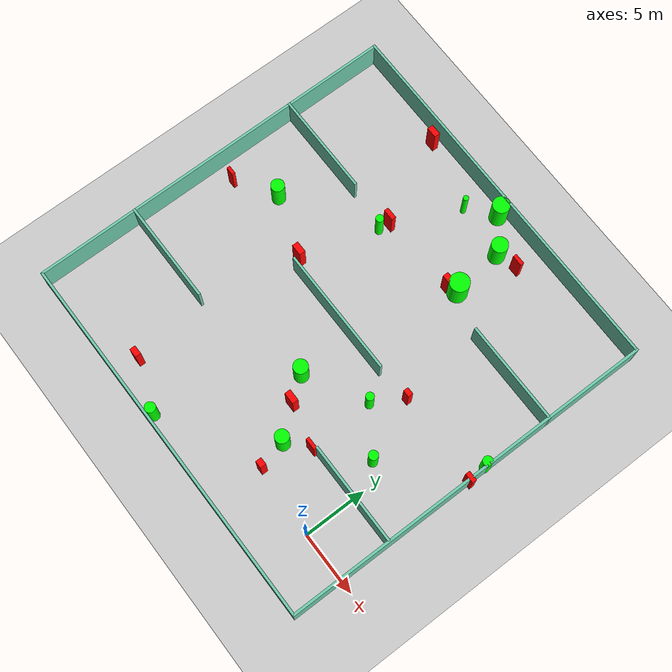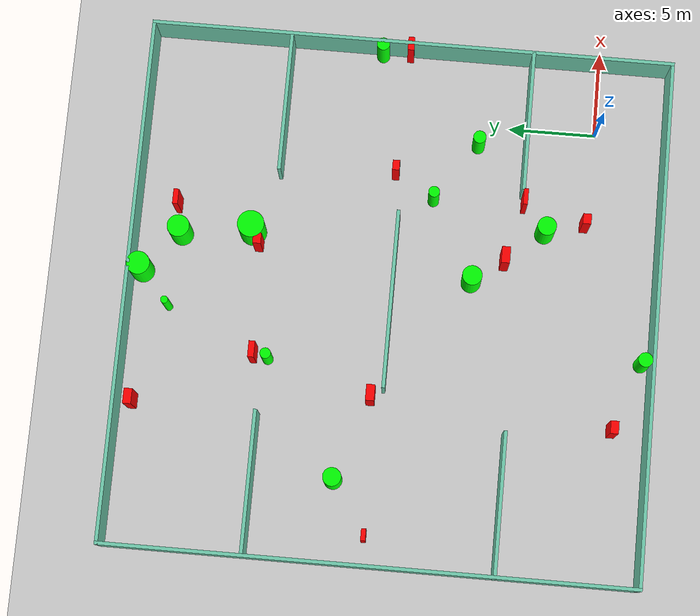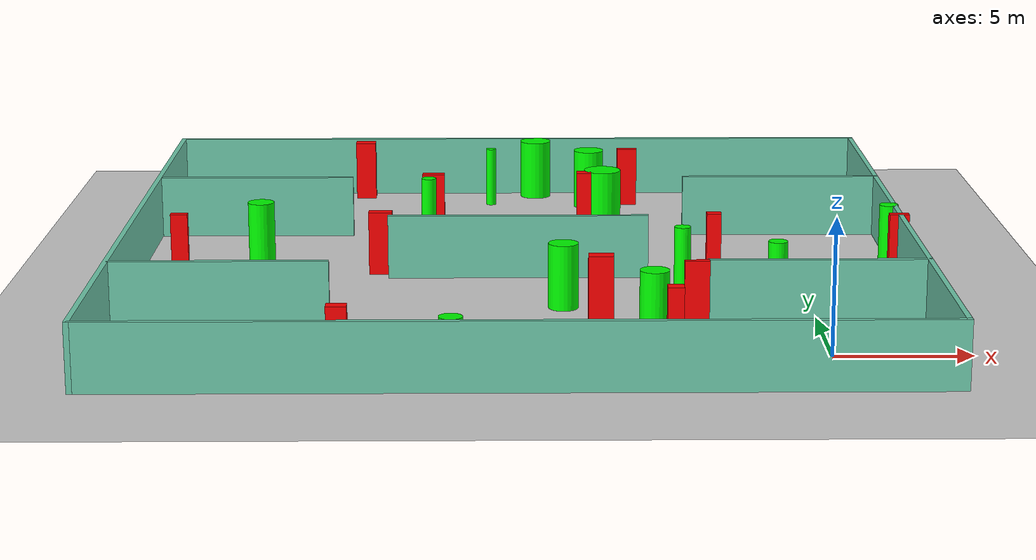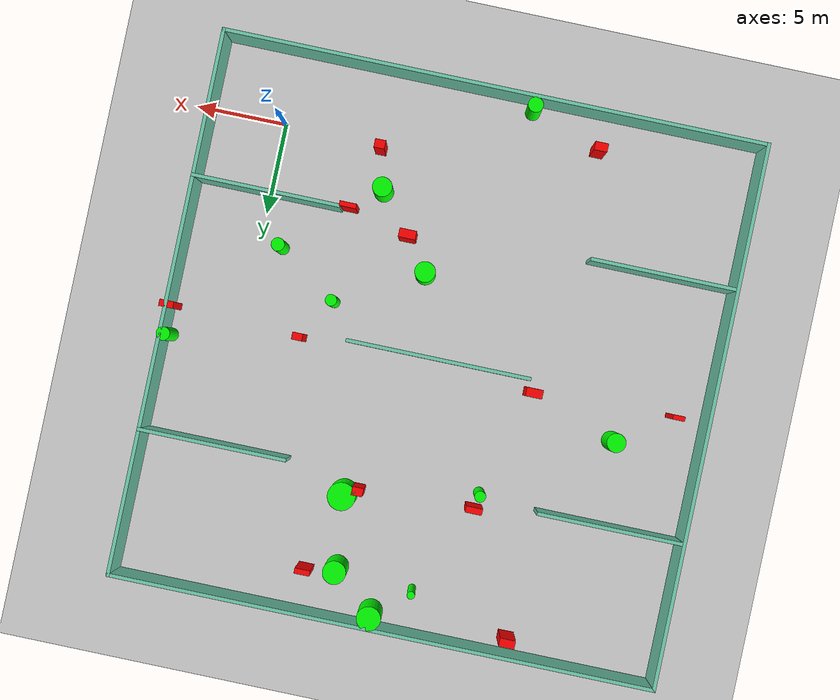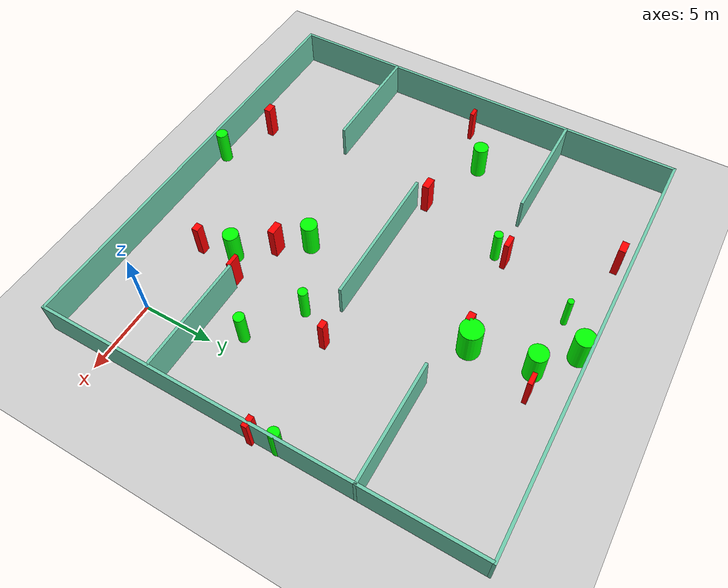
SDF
<sdf version="1.7">
 <world name="default">
  <light name="sun" type="directional">
   <pose>0 0 10 0 -0 0</pose>
   <diffuse>0.8 0.8 0.8 1</diffuse>
   <specular>0.2 0.2 0.2 1</specular>
   <attenuation>
    <range>1000</range>
    <constant>0.9</constant>
    <linear>0.01</linear>
    <quadratic>0.001</quadratic>
   </attenuation>
   <direction>-0.5 0.1 -0.9</direction>
   <spot><inner_angle>0</inner_angle><outer_angle>0</outer_angle><falloff>0</falloff></spot>
  </light>
  <model name="ground_plane">
   <static>1</static>
   <link name="link">
    <collision name="collision">
     <geometry><plane><normal>0 0 1</normal><size>100 100</size></plane></geometry>
     <surface>
      <contact><collide_bitmask>65535</collide_bitmask></contact>
      <friction><ode><mu>100</mu><mu2>50</mu2></ode></friction>
     </surface>
    </collision>
    <visual name="visual">
     <cast_shadows>0</cast_shadows>
     <geometry><plane><normal>0 0 1</normal><size>100 100</size></plane></geometry>
     <material>
      <script><uri>file://media/materials/scripts/gazebo.material</uri><name>Gazebo/Grey</name></script>
     </material>
    </visual>
   </link>
  </model>
  <gravity>0 0 -9.8</gravity>
  <magnetic_field>6e-06 2.3e-05 -4.2e-05</magnetic_field>
  <atmosphere type="adiabatic"/>
  <physics type="ode">
   <max_step_size>0.001</max_step_size>
   <real_time_factor>1</real_time_factor>
   <real_time_update_rate>1000</real_time_update_rate>
  </physics>
  <scene><ambient>0.4 0.4 0.4 1</ambient><background>0.7 0.7 0.7 1</background><shadows>1</shadows></scene>
  <spherical_coordinates>
   <surface_model>EARTH_WGS84</surface_model>
   <latitude_deg>0</latitude_deg>
   <longitude_deg>0</longitude_deg>
   <elevation>0</elevation>
   <heading_deg>0</heading_deg>
  </spherical_coordinates>
  <model name="my_base_walls">
   <link name="Wall_10">
    <collision name="Wall_10_Collision">
     <geometry><box><size>8.2 0.2 2.5</size></box></geometry>
     <pose>0 0 1.25 0 -0 0</pose>
    </collision>
    <visual name="Wall_10_Visual">
     <pose>0 0 1.25 0 -0 0</pose>
     <geometry><box><size>8.2 0.2 2.5</size></box></geometry>
     <material>
      <script><uri>file://media/materials/scripts/gazebo.material</uri><name>Gazebo/Grey</name></script>
      <ambient>0.435294 0.796078 0.67451 1</ambient>
     </material>
     <meta><layer>0</layer></meta>
    </visual>
    <pose>-11 -7 0 0 -0 0</pose>
   </link>
   <link name="Wall_12">
    <collision name="Wall_12_Collision">
     <geometry><box><size>8.2 0.2 2.5</size></box></geometry>
     <pose>0 0 1.25 0 -0 0</pose>
    </collision>
    <visual name="Wall_12_Visual">
     <pose>0 0 1.25 0 -0 0</pose>
     <geometry><box><size>8.2 0.2 2.5</size></box></geometry>
     <material>
      <script><uri>file://media/materials/scripts/gazebo.material</uri><name>Gazebo/Grey</name></script>
      <ambient>0.435294 0.796078 0.67451 1</ambient>
     </material>
     <meta><layer>0</layer></meta>
    </visual>
    <pose>-11 7 0 0 -0 0</pose>
   </link>
   <link name="Wall_14">
    <collision name="Wall_14_Collision">
     <geometry><box><size>8.2 0.2 2.5</size></box></geometry>
     <pose>0 0 1.25 0 -0 0</pose>
    </collision>
    <visual name="Wall_14_Visual">
     <pose>0 0 1.25 0 -0 0</pose>
     <geometry><box><size>8.2 0.2 2.5</size></box></geometry>
     <material>
      <script><uri>file://media/materials/scripts/gazebo.material</uri><name>Gazebo/Grey</name></script>
      <ambient>0.435294 0.796078 0.67451 1</ambient>
     </material>
     <meta><layer>0</layer></meta>
    </visual>
    <pose>11 7 0 0 -0 3.14159</pose>
   </link>
   <link name="Wall_16">
    <collision name="Wall_16_Collision">
     <geometry><box><size>10.2 0.2 2.5</size></box></geometry>
     <pose>0 0 1.25 0 -0 0</pose>
    </collision>
    <visual name="Wall_16_Visual">
     <pose>0 0 1.25 0 -0 0</pose>
     <geometry><box><size>10.2 0.2 2.5</size></box></geometry>
     <material>
      <script><uri>file://media/materials/scripts/gazebo.material</uri><name>Gazebo/Grey</name></script>
      <ambient>0.435294 0.796078 0.67451 1</ambient>
     </material>
     <meta><layer>0</layer></meta>
    </visual>
    <pose>0 0 0 0 -0 3.14159</pose>
   </link>
   <link name="Wall_2">
    <collision name="Wall_2_Collision">
     <geometry><box><size>30.2 0.2 2.5</size></box></geometry>
     <pose>0 0 1.25 0 -0 0</pose>
    </collision>
    <visual name="Wall_2_Visual">
     <pose>0 0 1.25 0 -0 0</pose>
     <geometry><box><size>30.2 0.2 2.5</size></box></geometry>
     <material>
      <script><uri>file://media/materials/scripts/gazebo.material</uri><name>Gazebo/Grey</name></script>
      <ambient>0.435294 0.796078 0.67451 1</ambient>
     </material>
     <meta><layer>0</layer></meta>
    </visual>
    <pose>0 -15 0 0 -0 3.14159</pose>
   </link>
   <link name="Wall_3">
    <collision name="Wall_3_Collision">
     <geometry><box><size>30.2 0.2 2.5</size></box></geometry>
     <pose>0 0 1.25 0 -0 0</pose>
    </collision>
    <visual name="Wall_3_Visual">
     <pose>0 0 1.25 0 -0 0</pose>
     <geometry><box><size>30.2 0.2 2.5</size></box></geometry>
     <material>
      <script><uri>file://media/materials/scripts/gazebo.material</uri><name>Gazebo/Grey</name></script>
      <ambient>0.435294 0.796078 0.67451 1</ambient>
     </material>
     <meta><layer>0</layer></meta>
    </visual>
    <pose>-15 0 0 0 -0 1.5708</pose>
   </link>
   <link name="Wall_4">
    <collision name="Wall_4_Collision">
     <geometry><box><size>30.2 0.2 2.5</size></box></geometry>
     <pose>0 0 1.25 0 -0 0</pose>
    </collision>
    <visual name="Wall_4_Visual">
     <pose>0 0 1.25 0 -0 0</pose>
     <geometry><box><size>30.2 0.2 2.5</size></box></geometry>
     <material>
      <script><uri>file://media/materials/scripts/gazebo.material</uri><name>Gazebo/Grey</name></script>
      <ambient>0.435294 0.796078 0.67451 1</ambient>
     </material>
     <meta><layer>0</layer></meta>
    </visual>
    <pose>0 15 0 0 -0 0</pose>
   </link>
   <link name="Wall_6">
    <collision name="Wall_6_Collision">
     <geometry><box><size>30.2 0.2 2.5</size></box></geometry>
     <pose>0 0 1.25 0 -0 0</pose>
    </collision>
    <visual name="Wall_6_Visual">
     <pose>0 0 1.25 0 -0 0</pose>
     <geometry><box><size>30.2 0.2 2.5</size></box></geometry>
     <material>
      <script><uri>file://media/materials/scripts/gazebo.material</uri><name>Gazebo/Grey</name></script>
      <ambient>0.435294 0.796078 0.67451 1</ambient>
     </material>
     <meta><layer>0</layer></meta>
    </visual>
    <pose>15 0 0 0 -0 1.5708</pose>
   </link>
   <link name="Wall_8">
    <collision name="Wall_8_Collision">
     <geometry><box><size>8.2 0.2 2.5</size></box></geometry>
     <pose>0 0 1.25 0 -0 0</pose>
    </collision>
    <visual name="Wall_8_Visual">
     <pose>0 0 1.25 0 -0 0</pose>
     <geometry><box><size>8.2 0.2 2.5</size></box></geometry>
     <material>
      <script><uri>file://media/materials/scripts/gazebo.material</uri><name>Gazebo/Grey</name></script>
      <ambient>0.435294 0.796078 0.67451 1</ambient>
     </material>
     <meta><layer>0</layer></meta>
    </visual>
    <pose>11 -7 0 0 -0 3.14159</pose>
   </link>
   <static>1</static>
   <pose>-11 11 0 0 -0 0</pose>
  </model>
  <model name="cylinder1">
   <static>1</static>
   <link name="link">
    <inertial>
     <mass>1</mass>
     <inertia><ixx>0.5</ixx><ixy>0</ixy><ixz>0</ixz><iyy>0.5</iyy><iyz>0</iyz><izz>1</izz></inertia>
    </inertial>
    <collision name="collision">
     <geometry><cylinder><radius>0.372145</radius><length>2.5</length></cylinder></geometry>
    </collision>
    <visual name="visual">
     <geometry><cylinder><radius>0.372145</radius><length>2.5</length></cylinder></geometry>
     <material>
      <ambient>0 1 0 1</ambient>
      <diffuse>0 1 0 1</diffuse>
      <specular>0.1 0.1 0.1 1</specular>
      <emissive>0 0 0 0</emissive>
     </material>
    </visual>
   </link>
   <pose>3.78691 12.6977 1.25 0 -0 0</pose>
  </model>
  <model name="cylinder2">
   <static>1</static>
   <link name="link">
    <inertial>
     <mass>1</mass>
     <inertia><ixx>0.5</ixx><ixy>0</ixy><ixz>0</ixz><iyy>0.5</iyy><iyz>0</iyz><izz>1</izz></inertia>
    </inertial>
    <collision name="collision">
     <geometry><cylinder><radius>0.567465</radius><length>2.5</length></cylinder></geometry>
    </collision>
    <visual name="visual">
     <geometry><cylinder><radius>0.567465</radius><length>2.5</length></cylinder></geometry>
     <material>
      <ambient>0 1 0 1</ambient>
      <diffuse>0 1 0 1</diffuse>
      <specular>0.1 0.1 0.1 1</specular>
      <emissive>0 0 0 0</emissive>
     </material>
    </visual>
   </link>
   <pose>-9.31358 6.53582 1.25 0 -0 0</pose>
  </model>
  <model name="cylinder3">
   <static>1</static>
   <link name="link">
    <inertial>
     <mass>1</mass>
     <inertia><ixx>0.5</ixx><ixy>0</ixy><ixz>0</ixz><iyy>0.5</iyy><iyz>0</iyz><izz>1</izz></inertia>
    </inertial>
    <collision name="collision">
     <geometry><cylinder><radius>0.366612</radius><length>2.5</length></cylinder></geometry>
    </collision>
    <visual name="visual">
     <geometry><cylinder><radius>0.366612</radius><length>2.5</length></cylinder></geometry>
     <material>
      <ambient>0 1 0 1</ambient>
      <diffuse>0 1 0 1</diffuse>
      <specular>0.1 0.1 0.1 1</specular>
      <emissive>0 0 0 0</emissive>
     </material>
    </visual>
   </link>
   <pose>-1.2569 6.73109 1.25 0 -0 0</pose>
  </model>
  <model name="cylinder4">
   <static>1</static>
   <link name="link">
    <inertial>
     <mass>1</mass>
     <inertia><ixx>0.5</ixx><ixy>0</ixy><ixz>0</ixz><iyy>0.5</iyy><iyz>0</iyz><izz>1</izz></inertia>
    </inertial>
    <collision name="collision">
     <geometry><cylinder><radius>0.767392</radius><length>2.5</length></cylinder></geometry>
    </collision>
    <visual name="visual">
     <geometry><cylinder><radius>0.767392</radius><length>2.5</length></cylinder></geometry>
     <material>
      <ambient>0 1 0 1</ambient>
      <diffuse>0 1 0 1</diffuse>
      <specular>0.1 0.1 0.1 1</specular>
      <emissive>0 0 0 0</emissive>
     </material>
    </visual>
   </link>
   <pose>-7.41271 19.2862 1.25 0 -0 0</pose>
  </model>
  <model name="cylinder5">
   <static>1</static>
   <link name="link">
    <inertial>
     <mass>1</mass>
     <inertia><ixx>0.5</ixx><ixy>0</ixy><ixz>0</ixz><iyy>0.5</iyy><iyz>0</iyz><izz>1</izz></inertia>
    </inertial>
    <collision name="collision">
     <geometry><cylinder><radius>0.525135</radius><length>2.5</length></cylinder></geometry>
    </collision>
    <visual name="visual">
     <geometry><cylinder><radius>0.525135</radius><length>2.5</length></cylinder></geometry>
     <material>
      <ambient>0 1 0 1</ambient>
      <diffuse>0 1 0 1</diffuse>
      <specular>0.1 0.1 0.1 1</specular>
      <emissive>0 0 0 0</emissive>
     </material>
    </visual>
   </link>
   <pose>-21.287 13.4044 1.25 0 -0 0</pose>
  </model>
  <model name="cylinder6">
   <static>1</static>
   <link name="link">
    <inertial>
     <mass>1</mass>
     <inertia><ixx>0.5</ixx><ixy>0</ixy><ixz>0</ixz><iyy>0.5</iyy><iyz>0</iyz><izz>1</izz></inertia>
    </inertial>
    <collision name="collision">
     <geometry><cylinder><radius>0.307878</radius><length>2.5</length></cylinder></geometry>
    </collision>
    <visual name="visual">
     <geometry><cylinder><radius>0.307878</radius><length>2.5</length></cylinder></geometry>
     <material>
      <ambient>0 1 0 1</ambient>
      <diffuse>0 1 0 1</diffuse>
      <specular>0.1 0.1 0.1 1</specular>
      <emissive>0 0 0 0</emissive>
     </material>
    </visual>
   </link>
   <pose>-14.7223 17.7472 1.25 0 -0 0</pose>
  </model>
  <model name="cylinder7">
   <static>1</static>
   <link name="link">
    <inertial>
     <mass>1</mass>
     <inertia><ixx>0.5</ixx><ixy>0</ixy><ixz>0</ixz><iyy>0.5</iyy><iyz>0</iyz><izz>1</izz></inertia>
    </inertial>
    <collision name="collision">
     <geometry><cylinder><radius>0.415955</radius><length>2.5</length></cylinder></geometry>
    </collision>
    <visual name="visual">
     <geometry><cylinder><radius>0.415955</radius><length>2.5</length></cylinder></geometry>
     <material>
      <ambient>0 1 0 1</ambient>
      <diffuse>0 1 0 1</diffuse>
      <specular>0.1 0.1 0.1 1</specular>
      <emissive>0 0 0 0</emissive>
     </material>
    </visual>
   </link>
   <pose>-13.2834 -3.50308 1.25 0 -0 0</pose>
  </model>
  <model name="cylinder8">
   <static>1</static>
   <link name="link">
    <inertial>
     <mass>1</mass>
     <inertia><ixx>0.5</ixx><ixy>0</ixy><ixz>0</ixz><iyy>0.5</iyy><iyz>0</iyz><izz>1</izz></inertia>
    </inertial>
    <collision name="collision">
     <geometry><cylinder><radius>0.318103</radius><length>2.5</length></cylinder></geometry>
    </collision>
    <visual name="visual">
     <geometry><cylinder><radius>0.318103</radius><length>2.5</length></cylinder></geometry>
     <material>
      <ambient>0 1 0 1</ambient>
      <diffuse>0 1 0 1</diffuse>
      <specular>0.1 0.1 0.1 1</specular>
      <emissive>0 0 0 0</emissive>
     </material>
    </visual>
   </link>
   <pose>-4.68006 9.07465 1.25 0 -0 0</pose>
  </model>
  <model name="cylinder9">
   <static>1</static>
   <link name="link">
    <inertial>
     <mass>1</mass>
     <inertia><ixx>0.5</ixx><ixy>0</ixy><ixz>0</ixz><iyy>0.5</iyy><iyz>0</iyz><izz>1</izz></inertia>
    </inertial>
    <collision name="collision">
     <geometry><cylinder><radius>0.665034</radius><length>2.5</length></cylinder></geometry>
    </collision>
    <visual name="visual">
     <geometry><cylinder><radius>0.665034</radius><length>2.5</length></cylinder></geometry>
     <material>
      <ambient>0 1 0 1</ambient>
      <diffuse>0 1 0 1</diffuse>
      <specular>0.1 0.1 0.1 1</specular>
      <emissive>0 0 0 0</emissive>
     </material>
    </visual>
   </link>
   <pose>-10.2008 25.4115 1.25 0 -0 0</pose>
  </model>
  <model name="cylinder10">
   <static>1</static>
   <link name="link">
    <inertial>
     <mass>1</mass>
     <inertia><ixx>0.5</ixx><ixy>0</ixy><ixz>0</ixz><iyy>0.5</iyy><iyz>0</iyz><izz>1</izz></inertia>
    </inertial>
    <collision name="collision">
     <geometry><cylinder><radius>0.542388</radius><length>2.5</length></cylinder></geometry>
    </collision>
    <visual name="visual">
     <geometry><cylinder><radius>0.542388</radius><length>2.5</length></cylinder></geometry>
     <material>
      <ambient>0 1 0 1</ambient>
      <diffuse>0 1 0 1</diffuse>
      <specular>0.1 0.1 0.1 1</specular>
      <emissive>0 0 0 0</emissive>
     </material>
    </visual>
   </link>
   <pose>-6.11483 2.53316 1.25 0 -0 0</pose>
  </model>
  <model name="cylinder11">
   <static>1</static>
   <link name="link">
    <inertial>
     <mass>1</mass>
     <inertia><ixx>0.5</ixx><ixy>0</ixy><ixz>0</ixz><iyy>0.5</iyy><iyz>0</iyz><izz>1</izz></inertia>
    </inertial>
    <collision name="collision">
     <geometry><cylinder><radius>0.212331</radius><length>2.5</length></cylinder></geometry>
    </collision>
    <visual name="visual">
     <geometry><cylinder><radius>0.212331</radius><length>2.5</length></cylinder></geometry>
     <material>
      <ambient>0 1 0 1</ambient>
      <diffuse>0 1 0 1</diffuse>
      <specular>0.1 0.1 0.1 1</specular>
      <emissive>0 0 0 0</emissive>
     </material>
    </visual>
   </link>
   <pose>-12.1762 23.7024 1.25 0 -0 0</pose>
  </model>
  <model name="cylinder12">
   <static>1</static>
   <link name="link">
    <inertial>
     <mass>1</mass>
     <inertia><ixx>0.5</ixx><ixy>0</ixy><ixz>0</ixz><iyy>0.5</iyy><iyz>0</iyz><izz>1</izz></inertia>
    </inertial>
    <collision name="collision">
     <geometry><cylinder><radius>0.637774</radius><length>2.5</length></cylinder></geometry>
    </collision>
    <visual name="visual">
     <geometry><cylinder><radius>0.637774</radius><length>2.5</length></cylinder></geometry>
     <material>
      <ambient>0 1 0 1</ambient>
      <diffuse>0 1 0 1</diffuse>
      <specular>0.1 0.1 0.1 1</specular>
      <emissive>0 0 0 0</emissive>
     </material>
    </visual>
   </link>
   <pose>-7.88074 23.3716 1.25 0 -0 0</pose>
  </model>
  <model name="box1">
   <static>1</static>
   <link name="link">
    <inertial>
     <mass>1</mass>
     <inertia><ixx>0.083</ixx><ixy>0</ixy><ixz>0</ixz><iyy>0.083</iyy><iyz>0</iyz><izz>0.083</izz></inertia>
    </inertial>
    <collision name="collision"><geometry><box><size>0.847521 0.299035 2.5</size></box></geometry></collision>
    <visual name="visual">
     <geometry><box><size>0.847521 0.299035 2.5</size></box></geometry>
     <material>
      <ambient>1 0 0 1</ambient>
      <diffuse>1 0 0 1</diffuse>
      <specular>0.1 0.1 0.1 1</specular>
      <emissive>0 0 0 0</emissive>
     </material>
    </visual>
   </link>
   <pose>-6.18765 23.6928 1.25 0 -0 0</pose>
  </model>
  <model name="box2">
   <static>1</static>
   <link name="link">
    <inertial>
     <mass>1</mass>
     <inertia><ixx>0.083</ixx><ixy>0</ixy><ixz>0</ixz><iyy>0.083</iyy><iyz>0</iyz><izz>0.083</izz></inertia>
    </inertial>
    <collision name="collision"><geometry><box><size>0.773255 0.369422 2.5</size></box></geometry></collision>
    <visual name="visual">
     <geometry><box><size>0.773255 0.369422 2.5</size></box></geometry>
     <material>
      <ambient>1 0 0 1</ambient>
      <diffuse>1 0 0 1</diffuse>
      <specular>0.1 0.1 0.1 1</specular>
      <emissive>0 0 0 0</emissive>
     </material>
    </visual>
   </link>
   <pose>3.95129 11.0914 1.25 0 -0 0</pose>
  </model>
  <model name="box3">
   <static>1</static>
   <link name="link">
    <inertial>
     <mass>1</mass>
     <inertia><ixx>0.083</ixx><ixy>0</ixy><ixz>0</ixz><iyy>0.083</iyy><iyz>0</iyz><izz>0.083</izz></inertia>
    </inertial>
    <collision name="collision"><geometry><box><size>0.915894 0.351575 2.5</size></box></geometry></collision>
    <visual name="visual">
     <geometry><box><size>0.915894 0.351575 2.5</size></box></geometry>
     <material>
      <ambient>1 0 0 1</ambient>
      <diffuse>1 0 0 1</diffuse>
      <specular>0.1 0.1 0.1 1</specular>
      <emissive>0 0 0 0</emissive>
     </material>
    </visual>
   </link>
   <pose>-14.5475 18.5512 1.25 0 -0 0</pose>
  </model>
  <model name="box4">
   <static>1</static>
   <link name="link">
    <inertial>
     <mass>1</mass>
     <inertia><ixx>0.083</ixx><ixy>0</ixy><ixz>0</ixz><iyy>0.083</iyy><iyz>0</iyz><izz>0.083</izz></inertia>
    </inertial>
    <collision name="collision"><geometry><box><size>0.935295 0.483914 2.5</size></box></geometry></collision>
    <visual name="visual">
     <geometry><box><size>0.935295 0.483914 2.5</size></box></geometry>
     <material>
      <ambient>1 0 0 1</ambient>
      <diffuse>1 0 0 1</diffuse>
      <specular>0.1 0.1 0.1 1</specular>
      <emissive>0 0 0 0</emissive>
     </material>
    </visual>
   </link>
   <pose>-7.96277 4.72968 1.25 0 -0 0</pose>
  </model>
  <model name="box5">
   <static>1</static>
   <link name="link">
    <inertial>
     <mass>1</mass>
     <inertia><ixx>0.083</ixx><ixy>0</ixy><ixz>0</ixz><iyy>0.083</iyy><iyz>0</iyz><izz>0.083</izz></inertia>
    </inertial>
    <collision name="collision"><geometry><box><size>0.912568 0.49197 2.5</size></box></geometry></collision>
    <visual name="visual">
     <geometry><box><size>0.912568 0.49197 2.5</size></box></geometry>
     <material>
      <ambient>1 0 0 1</ambient>
      <diffuse>1 0 0 1</diffuse>
      <specular>0.1 0.1 0.1 1</specular>
      <emissive>0 0 0 0</emissive>
     </material>
    </visual>
   </link>
   <pose>-16.4251 11.6961 1.25 0 -0 0</pose>
  </model>
  <model name="box6">
   <static>1</static>
   <link name="link">
    <inertial>
     <mass>1</mass>
     <inertia><ixx>0.083</ixx><ixy>0</ixy><ixz>0</ixz><iyy>0.083</iyy><iyz>0</iyz><izz>0.083</izz></inertia>
    </inertial>
    <collision name="collision"><geometry><box><size>0.921177 0.264648 2.5</size></box></geometry></collision>
    <visual name="visual">
     <geometry><box><size>0.921177 0.264648 2.5</size></box></geometry>
     <material>
      <ambient>1 0 0 1</ambient>
      <diffuse>1 0 0 1</diffuse>
      <specular>0.1 0.1 0.1 1</specular>
      <emissive>0 0 0 0</emissive>
     </material>
    </visual>
   </link>
   <pose>-4.49804 3.85624 1.25 0 -0 0</pose>
  </model>
  <model name="box7">
   <static>1</static>
   <link name="link">
    <inertial>
     <mass>1</mass>
     <inertia><ixx>0.083</ixx><ixy>0</ixy><ixz>0</ixz><iyy>0.083</iyy><iyz>0</iyz><izz>0.083</izz></inertia>
    </inertial>
    <collision name="collision"><geometry><box><size>0.579786 0.472527 2.5</size></box></geometry></collision>
    <visual name="visual">
     <geometry><box><size>0.579786 0.472527 2.5</size></box></geometry>
     <material>
      <ambient>1 0 0 1</ambient>
      <diffuse>1 0 0 1</diffuse>
      <specular>0.1 0.1 0.1 1</specular>
      <emissive>0 0 0 0</emissive>
     </material>
    </visual>
   </link>
   <pose>-5.50458 0.293195 1.25 0 -0 0</pose>
  </model>
  <model name="box8">
   <static>1</static>
   <link name="link">
    <inertial>
     <mass>1</mass>
     <inertia><ixx>0.083</ixx><ixy>0</ixy><ixz>0</ixz><iyy>0.083</iyy><iyz>0</iyz><izz>0.083</izz></inertia>
    </inertial>
    <collision name="collision"><geometry><box><size>0.719225 0.463926 2.5</size></box></geometry></collision>
    <visual name="visual">
     <geometry><box><size>0.719225 0.463926 2.5</size></box></geometry>
     <material>
      <ambient>1 0 0 1</ambient>
      <diffuse>1 0 0 1</diffuse>
      <specular>0.1 0.1 0.1 1</specular>
      <emissive>0 0 0 0</emissive>
     </material>
    </visual>
   </link>
   <pose>-17.206 -2.02239 1.25 0 -0 0</pose>
  </model>
  <model name="box9">
   <static>1</static>
   <link name="link">
    <inertial>
     <mass>1</mass>
     <inertia><ixx>0.083</ixx><ixy>0</ixy><ixz>0</ixz><iyy>0.083</iyy><iyz>0</iyz><izz>0.083</izz></inertia>
    </inertial>
    <collision name="collision"><geometry><box><size>0.668508 0.26331 2.5</size></box></geometry></collision>
    <visual name="visual">
     <geometry><box><size>0.668508 0.26331 2.5</size></box></geometry>
     <material>
      <ambient>1 0 0 1</ambient>
      <diffuse>1 0 0 1</diffuse>
      <specular>0.1 0.1 0.1 1</specular>
      <emissive>0 0 0 0</emissive>
     </material>
    </visual>
   </link>
   <pose>-24.305 11.3934 1.25 0 -0 0</pose>
  </model>
  <model name="box10">
   <static>1</static>
   <link name="link">
    <inertial>
     <mass>1</mass>
     <inertia><ixx>0.083</ixx><ixy>0</ixy><ixz>0</ixz><iyy>0.083</iyy><iyz>0</iyz><izz>0.083</izz></inertia>
    </inertial>
    <collision name="collision"><geometry><box><size>0.568513 0.402509 2.5</size></box></geometry></collision>
    <visual name="visual">
     <geometry><box><size>0.568513 0.402509 2.5</size></box></geometry>
     <material>
      <ambient>1 0 0 1</ambient>
      <diffuse>1 0 0 1</diffuse>
      <specular>0.1 0.1 0.1 1</specular>
      <emissive>0 0 0 0</emissive>
     </material>
    </visual>
   </link>
   <pose>-3.30362 11.3626 1.25 0 -0 0</pose>
  </model>
  <model name="box11">
   <static>1</static>
   <link name="link">
    <inertial>
     <mass>1</mass>
     <inertia><ixx>0.083</ixx><ixy>0</ixy><ixz>0</ixz><iyy>0.083</iyy><iyz>0</iyz><izz>0.083</izz></inertia>
    </inertial>
    <collision name="collision"><geometry><box><size>0.856466 0.466147 2.5</size></box></geometry></collision>
    <visual name="visual">
     <geometry><box><size>0.856466 0.466147 2.5</size></box></geometry>
     <material>
      <ambient>1 0 0 1</ambient>
      <diffuse>1 0 0 1</diffuse>
      <specular>0.1 0.1 0.1 1</specular>
      <emissive>0 0 0 0</emissive>
     </material>
    </visual>
   </link>
   <pose>-17.7697 25.1707 1.25 0 -0 0</pose>
  </model>
  <model name="box12">
   <static>1</static>
   <link name="link">
    <inertial>
     <mass>1</mass>
     <inertia><ixx>0.083</ixx><ixy>0</ixy><ixz>0</ixz><iyy>0.083</iyy><iyz>0</iyz><izz>0.083</izz></inertia>
    </inertial>
    <collision name="collision"><geometry><box><size>0.613134 0.463298 2.5</size></box></geometry></collision>
    <visual name="visual">
     <geometry><box><size>0.613134 0.463298 2.5</size></box></geometry>
     <material>
      <ambient>1 0 0 1</ambient>
      <diffuse>1 0 0 1</diffuse>
      <specular>0.1 0.1 0.1 1</specular>
      <emissive>0 0 0 0</emissive>
     </material>
    </visual>
   </link>
   <pose>-8.20147 18.8538 1.25 0 -0 0</pose>
  </model>
 </world>
</sdf>
